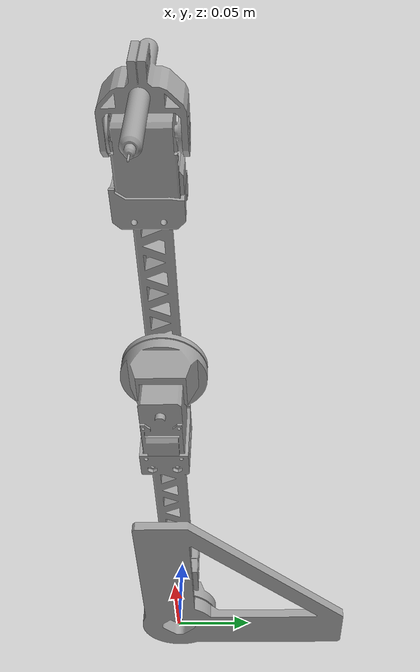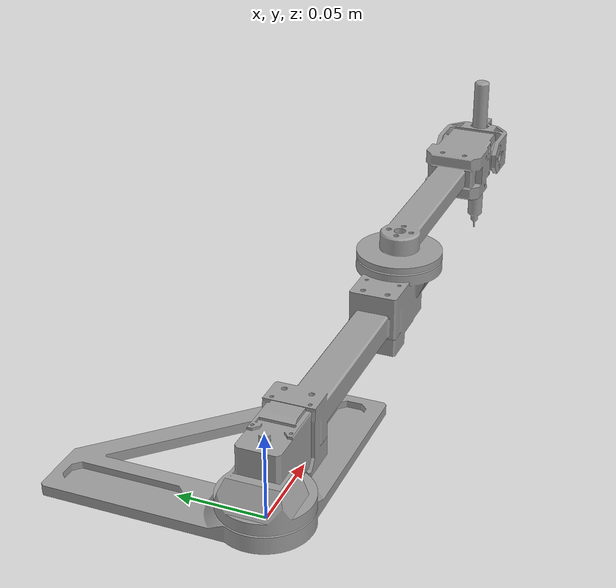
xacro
<?xml version="1.0" ?>
<robot name="bsl_plotter" xmlns:xacro="http://www.ros.org/wiki/xacro">

<xacro:include filename="$(find bsl_plotter_description)/urdf/materials.xacro" />
<xacro:include filename="$(find bsl_plotter_description)/urdf/bsl_plotter.trans" />
<xacro:include filename="$(find bsl_plotter_description)/urdf/bsl_plotter.gazebo" />
<link name="base_link">
  <inertial>
    <origin xyz="0.02683994115918031 0.026839941159171318 0.0013078177490804205" rpy="0 0 0"/>
    <mass value="0.4555514587471985"/>
    <inertia ixx="0.000718" iyy="0.000718" izz="0.00143" ixy="0.000196" iyz="8e-06" ixz="8e-06"/>
  </inertial>
  <visual>
    <origin xyz="0 0 0" rpy="0 0 0"/>
    <geometry>
      <mesh filename="package://bsl_plotter_description/meshes/base_link.stl" scale="0.001 0.001 0.001"/>
    </geometry>
    <material name="_"/>
  </visual>
  <collision>
    <origin xyz="0 0 0" rpy="0 0 0"/>
    <geometry>
      <mesh filename="package://bsl_plotter_description/meshes/base_link.stl" scale="0.001 0.001 0.001"/>
    </geometry>
  </collision>
</link>

<link name="link_upper_arm_v7_1">
  <inertial>
    <origin xyz="0.10001640364560788 4.5612327179100755e-06 0.018695208453513433" rpy="0 0 0"/>
    <mass value="0.780812047923547"/>
    <inertia ixx="0.000187" iyy="0.004839" izz="0.004806" ixy="0.0" iyz="0.0" ixz="-0.000445"/>
  </inertial>
  <visual>
    <origin xyz="-0.0 -0.0 -0.012628" rpy="0 0 0"/>
    <geometry>
      <mesh filename="package://bsl_plotter_description/meshes/link_upper_arm_v7_1.stl" scale="0.001 0.001 0.001"/>
    </geometry>
    <material name="_"/>
  </visual>
  <collision>
    <origin xyz="-0.0 -0.0 -0.012628" rpy="0 0 0"/>
    <geometry>
      <mesh filename="package://bsl_plotter_description/meshes/link_upper_arm_v7_1.stl" scale="0.001 0.001 0.001"/>
    </geometry>
  </collision>
</link>

<link name="link_fore_arm_v4_1">
  <inertial>
    <origin xyz="0.09525045358745049 6.763576966533446e-05 0.014023784367027892" rpy="0 0 0"/>
    <mass value="0.6036557554989143"/>
    <inertia ixx="8e-05" iyy="0.001712" izz="0.001736" ixy="-2e-06" iyz="-0.0" ixz="-4.2e-05"/>
  </inertial>
  <visual>
    <origin xyz="-0.200015 -0.0 -0.049828" rpy="0 0 0"/>
    <geometry>
      <mesh filename="package://bsl_plotter_description/meshes/link_fore_arm_v4_1.stl" scale="0.001 0.001 0.001"/>
    </geometry>
    <material name="_"/>
  </visual>
  <collision>
    <origin xyz="-0.200015 -0.0 -0.049828" rpy="0 0 0"/>
    <geometry>
      <mesh filename="package://bsl_plotter_description/meshes/link_fore_arm_v4_1.stl" scale="0.001 0.001 0.001"/>
    </geometry>
  </collision>
</link>

<link name="link_hand_v9_1">
  <inertial>
    <origin xyz="0.01743661358196874 0.01913026634429513 -0.015610882147768873" rpy="0 0 0"/>
    <mass value="0.18190095498276979"/>
    <inertia ixx="0.000195" iyy="0.000198" izz="3.4e-05" ixy="-0.0" iyz="-1e-06" ixz="-2.6e-05"/>
  </inertial>
  <visual>
    <origin xyz="-0.350015 0.0186 -0.064546" rpy="0 0 0"/>
    <geometry>
      <mesh filename="package://bsl_plotter_description/meshes/link_hand_v9_1.stl" scale="0.001 0.001 0.001"/>
    </geometry>
    <material name="_"/>
  </visual>
  <collision>
    <origin xyz="-0.350015 0.0186 -0.064546" rpy="0 0 0"/>
    <geometry>
      <mesh filename="package://bsl_plotter_description/meshes/link_hand_v9_1.stl" scale="0.001 0.001 0.001"/>
    </geometry>
  </collision>
</link>

<link name="link_finger">
  <inertial>
    <origin xyz="0.0 0.0 0.0" rpy="0 0 0"/>
    <mass value="0.18190095498276979"/>
    <inertia ixx="0.000195" iyy="0.000198" izz="3.4e-05" ixy="-0.0" iyz="-1e-06" ixz="-2.6e-05"/>
  </inertial>
</link>

<joint name="rev1" type="continuous">
  <origin xyz="0.0 0.0 0.012628" rpy="0 0 0"/>
  <parent link="base_link"/>
  <child link="link_upper_arm_v7_1"/>
  <axis xyz="0.0 0.0 -1.0"/>
</joint>

<joint name="rev2" type="continuous">
  <origin xyz="0.200015 0.0 0.0372" rpy="0 0 0"/>
  <parent link="link_upper_arm_v7_1"/>
  <child link="link_fore_arm_v4_1"/>
  <axis xyz="0.0 -0.0 1.0"/>
</joint>

<joint name="rev3" type="continuous">
  <origin xyz="0.15 -0.0186 0.014718" rpy="0 0 0"/>
  <parent link="link_fore_arm_v4_1"/>
  <child link="link_hand_v9_1"/>
  <axis xyz="0.0 -1.0 -0.0"/>

</joint>
<joint name="rev4" type="continuous">
  <origin xyz="0.225 0.0186 0.0" rpy="0 0 0"/>
  <parent link="link_hand_v9_1"/>
  <child link="link_finger"/>
  <axis xyz="0.0 -1.0 -0.0"/>
</joint>

</robot>

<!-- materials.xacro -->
<robot name="bsl_plotter" xmlns:xacro="http://www.ros.org/wiki/xacro" >

<material name="silver_default">
  <color rgba="0.700 0.700 0.700 1.000"/>
</material>
<material name="_">
  <color rgba="0.6274509803921569 0.6274509803921569 0.6274509803921569 1.0"/>
</material>

</robot>

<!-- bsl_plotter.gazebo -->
<robot name="bsl_plotter" xmlns:xacro="http://www.ros.org/wiki/xacro" >

<xacro:property name="body_color" value="Gazebo/Silver" />

<gazebo>
  <plugin name="control" filename="libgazebo_ros_control.so"/>
</gazebo>
<gazebo reference="base_link">
  <material>${body_color}</material>
  <mu1>0.2</mu1>
  <mu2>0.2</mu2>
  <selfCollide>true</selfCollide>
  <gravity>true</gravity>
</gazebo>

<gazebo reference="link_upper_arm_v7_1">
  <material>${body_color}</material>
  <mu1>0.2</mu1>
  <mu2>0.2</mu2>
  <selfCollide>true</selfCollide>
</gazebo>

<gazebo reference="link_fore_arm_v4_1">
  <material>${body_color}</material>
  <mu1>0.2</mu1>
  <mu2>0.2</mu2>
  <selfCollide>true</selfCollide>
</gazebo>

<gazebo reference="link_hand_v9_1">
  <material>${body_color}</material>
  <mu1>0.2</mu1>
  <mu2>0.2</mu2>
  <selfCollide>true</selfCollide>
</gazebo>

</robot>
